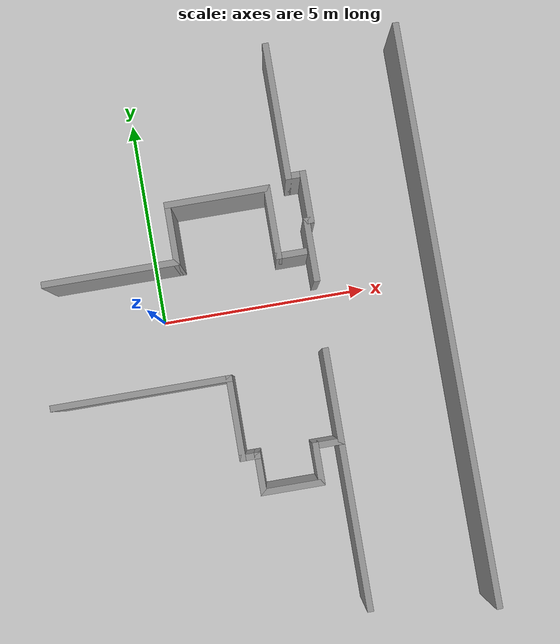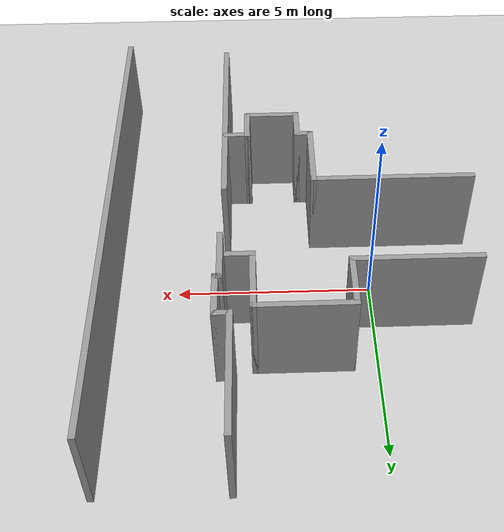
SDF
<sdf version="1.6">
 <world name="default">
  <light name="sun" type="directional">
   <pose>0 0 10 0 -0 0</pose>
   <diffuse>0.8 0.8 0.8 1</diffuse>
   <specular>0.1 0.1 0.1 1</specular>
   <attenuation>
    <range>1000</range>
    <constant>0.9</constant>
    <linear>0.01</linear>
    <quadratic>0.001</quadratic>
   </attenuation>
   <direction>-0.5 0.5 -1</direction>
  </light>
  <model name="ground_plane">
   <static>1</static>
   <link name="link">
    <collision name="collision">
     <geometry><plane><normal>0 0 1</normal><size>100 100</size></plane></geometry>
     <surface><friction><ode><mu>100</mu><mu2>50</mu2></ode></friction></surface>
    </collision>
    <visual name="visual">
     <cast_shadows>0</cast_shadows>
     <geometry><plane><normal>0 0 1</normal><size>100 100</size></plane></geometry>
     <material>
      <script><uri>file://media/materials/scripts/gazebo.material</uri><name>Gazebo/Grey</name></script>
     </material>
    </visual>
   </link>
  </model>
  <gravity>0 0 -9.8</gravity>
  <magnetic_field>6e-06 2.3e-05 -4.2e-05</magnetic_field>
  <atmosphere type="adiabatic"/>
  <physics name="default_physics" default="0" type="ode">
   <max_step_size>0.001</max_step_size>
   <real_time_factor>1</real_time_factor>
   <real_time_update_rate>1000</real_time_update_rate>
  </physics>
  <scene><ambient>0.4 0.4 0.4 1</ambient><background>0.7 0.7 0.7 1</background><shadows>1</shadows></scene>
  <spherical_coordinates>
   <surface_model>EARTH_WGS84</surface_model>
   <latitude_deg>0</latitude_deg>
   <longitude_deg>0</longitude_deg>
   <elevation>0</elevation>
   <heading_deg>0</heading_deg>
  </spherical_coordinates>
  <model name="watkinslab">
   <pose>1.96165 -0.985306 0 0 -0 0</pose>
   <link name="Wall_1">
    <collision name="Wall_1_Collision">
     <geometry><box><size>13.75 0.15 2.5</size></box></geometry>
     <pose>0 0 1.25 0 -0 0</pose>
    </collision>
    <visual name="Wall_1_Visual">
     <pose>0 0 1.25 0 -0 0</pose>
     <geometry><box><size>13.75 0.15 2.5</size></box></geometry>
     <material>
      <script><uri>file://media/materials/scripts/gazebo.material</uri><name>Gazebo/Grey</name></script>
      <ambient>1 1 1 1</ambient>
     </material>
    </visual>
    <pose>4.65632 -0.012516 0 0 -0 1.5708</pose>
   </link>
   <link name="Wall_11">
    <collision name="Wall_11_Collision">
     <geometry><box><size>3.25 0.15 2.5</size></box></geometry>
     <pose>0 0 1.25 0 -0 0</pose>
    </collision>
    <visual name="Wall_11_Visual">
     <pose>0 0 1.25 0 -0 0</pose>
     <geometry><box><size>3.25 0.15 2.5</size></box></geometry>
     <material>
      <script><uri>file://media/materials/scripts/gazebo.material</uri><name>Gazebo/Grey</name></script>
      <ambient>1 1 1 1</ambient>
     </material>
    </visual>
    <pose>-2.86007 2.16892 0 0 -0 0</pose>
   </link>
   <link name="Wall_12">
    <collision name="Wall_12_Collision">
     <geometry><box><size>1.5 0.15 2.5</size></box></geometry>
     <pose>0 0 1.25 0 -0 0</pose>
    </collision>
    <visual name="Wall_12_Visual">
     <pose>0 0 1.25 0 -0 0</pose>
     <geometry><box><size>1.5 0.15 2.5</size></box></geometry>
     <material>
      <script><uri>file://media/materials/scripts/gazebo.material</uri><name>Gazebo/Grey</name></script>
      <ambient>1 1 1 1</ambient>
     </material>
    </visual>
    <pose>-1.31007 2.84392 0 0 -0 1.5708</pose>
   </link>
   <link name="Wall_13">
    <collision name="Wall_13_Collision">
     <geometry><box><size>2.5 0.15 2.5</size></box></geometry>
     <pose>0 0 1.25 0 -0 0</pose>
    </collision>
    <visual name="Wall_13_Visual">
     <pose>0 0 1.25 0 -0 0</pose>
     <geometry><box><size>2.5 0.15 2.5</size></box></geometry>
     <material>
      <script><uri>file://media/materials/scripts/gazebo.material</uri><name>Gazebo/Grey</name></script>
      <ambient>1 1 1 1</ambient>
     </material>
    </visual>
    <pose>-0.135065 3.51892 0 0 -0 0</pose>
   </link>
   <link name="Wall_14">
    <collision name="Wall_14_Collision">
     <geometry><box><size>1.75 0.15 2.5</size></box></geometry>
     <pose>0 0 1.25 0 -0 0</pose>
    </collision>
    <visual name="Wall_14_Visual">
     <pose>0 0 1.25 0 -0 0</pose>
     <geometry><box><size>1.75 0.15 2.5</size></box></geometry>
     <material>
      <script><uri>file://media/materials/scripts/gazebo.material</uri><name>Gazebo/Grey</name></script>
      <ambient>1 1 1 1</ambient>
     </material>
    </visual>
    <pose>1.03994 2.71892 0 0 0 -1.5708</pose>
   </link>
   <link name="Wall_16">
    <collision name="Wall_16_Collision">
     <geometry><box><size>0.75 0.15 2.5</size></box></geometry>
     <pose>0 0 1.25 0 -0 0</pose>
    </collision>
    <visual name="Wall_16_Visual">
     <pose>0 0 1.25 0 -0 0</pose>
     <geometry><box><size>0.75 0.15 2.5</size></box></geometry>
     <material>
      <script><uri>file://media/materials/scripts/gazebo.material</uri><name>Gazebo/Grey</name></script>
      <ambient>1 1 1 1</ambient>
     </material>
    </visual>
    <pose>1.33994 1.91892 0 0 -0 0</pose>
   </link>
   <link name="Wall_18">
    <collision name="Wall_18_Collision">
     <geometry><box><size>4.25 0.15 2.5</size></box></geometry>
     <pose>0 0 1.25 0 -0 0</pose>
    </collision>
    <visual name="Wall_18_Visual">
     <pose>0 0 1.25 0 -0 0</pose>
     <geometry><box><size>4.25 0.15 2.5</size></box></geometry>
     <material>
      <script><uri>file://media/materials/scripts/gazebo.material</uri><name>Gazebo/Grey</name></script>
      <ambient>1 1 1 1</ambient>
     </material>
    </visual>
    <pose>-2.60632 -0.68056 0 0 -0 0</pose>
   </link>
   <link name="Wall_19">
    <collision name="Wall_19_Collision">
     <geometry><box><size>2 0.15 2.5</size></box></geometry>
     <pose>0 0 1.25 0 -0 0</pose>
    </collision>
    <visual name="Wall_19_Visual">
     <pose>0 0 1.25 0 -0 0</pose>
     <geometry><box><size>2 0.15 2.5</size></box></geometry>
     <material>
      <script><uri>file://media/materials/scripts/gazebo.material</uri><name>Gazebo/Grey</name></script>
      <ambient>1 1 1 1</ambient>
     </material>
    </visual>
    <pose>-0.556316 -1.60556 0 0 0 -1.5708</pose>
   </link>
   <link name="Wall_20">
    <collision name="Wall_20_Collision">
     <geometry><box><size>0.5 0.15 2.5</size></box></geometry>
     <pose>0 0 1.25 0 -0 0</pose>
    </collision>
    <visual name="Wall_20_Visual">
     <pose>0 0 1.25 0 -0 0</pose>
     <geometry><box><size>0.5 0.15 2.5</size></box></geometry>
     <material>
      <script><uri>file://media/materials/scripts/gazebo.material</uri><name>Gazebo/Grey</name></script>
      <ambient>1 1 1 1</ambient>
     </material>
    </visual>
    <pose>-0.381316 -2.53056 0 0 -0 0</pose>
   </link>
   <link name="Wall_21">
    <collision name="Wall_21_Collision">
     <geometry><box><size>1 0.15 2.5</size></box></geometry>
     <pose>0 0 1.25 0 -0 0</pose>
    </collision>
    <visual name="Wall_21_Visual">
     <pose>0 0 1.25 0 -0 0</pose>
     <geometry><box><size>1 0.15 2.5</size></box></geometry>
     <material>
      <script><uri>file://media/materials/scripts/gazebo.material</uri><name>Gazebo/Grey</name></script>
      <ambient>1 1 1 1</ambient>
     </material>
    </visual>
    <pose>-0.206316 -2.95556 0 0 0 -1.5708</pose>
   </link>
   <link name="Wall_22">
    <collision name="Wall_22_Collision">
     <geometry><box><size>1.5 0.15 2.5</size></box></geometry>
     <pose>0 0 1.25 0 -0 0</pose>
    </collision>
    <visual name="Wall_22_Visual">
     <pose>0 0 1.25 0 -0 0</pose>
     <geometry><box><size>1.5 0.15 2.5</size></box></geometry>
     <material>
      <script><uri>file://media/materials/scripts/gazebo.material</uri><name>Gazebo/Grey</name></script>
      <ambient>1 1 1 1</ambient>
     </material>
    </visual>
    <pose>0.468684 -3.38056 0 0 -0 0</pose>
   </link>
   <link name="Wall_23">
    <collision name="Wall_23_Collision">
     <geometry><box><size>1 0.15 2.5</size></box></geometry>
     <pose>0 0 1.25 0 -0 0</pose>
    </collision>
    <visual name="Wall_23_Visual">
     <pose>0 0 1.25 0 -0 0</pose>
     <geometry><box><size>1 0.15 2.5</size></box></geometry>
     <material>
      <script><uri>file://media/materials/scripts/gazebo.material</uri><name>Gazebo/Grey</name></script>
      <ambient>1 1 1 1</ambient>
     </material>
    </visual>
    <pose>1.14368 -2.95556 0 0 -0 1.5708</pose>
   </link>
   <link name="Wall_24">
    <collision name="Wall_24_Collision">
     <geometry><box><size>0.75 0.15 2.5</size></box></geometry>
     <pose>0 0 1.25 0 -0 0</pose>
    </collision>
    <visual name="Wall_24_Visual">
     <pose>0 0 1.25 0 -0 0</pose>
     <geometry><box><size>0.75 0.15 2.5</size></box></geometry>
     <material>
      <script><uri>file://media/materials/scripts/gazebo.material</uri><name>Gazebo/Grey</name></script>
      <ambient>1 1 1 1</ambient>
     </material>
    </visual>
    <pose>1.44368 -2.53056 0 0 -0 0</pose>
   </link>
   <link name="Wall_26">
    <collision name="Wall_26_Collision">
     <geometry><box><size>0.25 0.15 2.5</size></box></geometry>
     <pose>0 0 1.25 0 -0 0</pose>
    </collision>
    <visual name="Wall_26_Visual">
     <pose>0 0 1.25 0 -0 0</pose>
     <geometry><box><size>0.25 0.15 2.5</size></box></geometry>
     <material>
      <script><uri>file://media/materials/scripts/gazebo.material</uri><name>Gazebo/Grey</name></script>
      <ambient>1 1 1 1</ambient>
     </material>
    </visual>
    <pose>1.87033 2.61252 0 0 -0 3.14159</pose>
   </link>
   <link name="Wall_27">
    <collision name="Wall_27_Collision">
     <geometry><box><size>1.5 0.15 2.5</size></box></geometry>
     <pose>0 0 1.25 0 -0 0</pose>
    </collision>
    <visual name="Wall_27_Visual">
     <pose>0 0 1.25 0 -0 0</pose>
     <geometry><box><size>1.5 0.15 2.5</size></box></geometry>
     <material>
      <script><uri>file://media/materials/scripts/gazebo.material</uri><name>Gazebo/Grey</name></script>
      <ambient>1 1 1 1</ambient>
     </material>
    </visual>
    <pose>1.82032 1.93752 0 0 0 -1.5708</pose>
   </link>
   <link name="Wall_29">
    <collision name="Wall_29_Collision">
     <geometry><box><size>2.25 0.15 2.5</size></box></geometry>
     <pose>0 0 1.25 0 -0 0</pose>
    </collision>
    <visual name="Wall_29_Visual">
     <pose>0 0 1.25 0 -0 0</pose>
     <geometry><box><size>2.25 0.15 2.5</size></box></geometry>
     <material>
      <script><uri>file://media/materials/scripts/gazebo.material</uri><name>Gazebo/Grey</name></script>
      <ambient>1 1 1 1</ambient>
     </material>
    </visual>
    <pose>1.74368 -1.48056 0 0 -0 1.5708</pose>
   </link>
   <link name="Wall_31">
    <collision name="Wall_31_Collision">
     <geometry><box><size>4 0.15 2.5</size></box></geometry>
     <pose>0 0 1.25 0 -0 0</pose>
    </collision>
    <visual name="Wall_31_Visual">
     <pose>0 0 1.25 0 -0 0</pose>
     <geometry><box><size>4 0.15 2.5</size></box></geometry>
     <material>
      <script><uri>file://media/materials/scripts/gazebo.material</uri><name>Gazebo/Grey</name></script>
      <ambient>1 1 1 1</ambient>
     </material>
    </visual>
    <pose>1.74368 -4.45556 0 0 0 -1.5708</pose>
   </link>
   <link name="Wall_5">
    <collision name="Wall_5_Collision">
     <geometry><box><size>3.25 0.15 2.5</size></box></geometry>
     <pose>0 0 1.25 0 -0 0</pose>
    </collision>
    <visual name="Wall_5_Visual">
     <pose>0 0 1.25 0 -0 0</pose>
     <geometry><box><size>3.25 0.15 2.5</size></box></geometry>
     <material>
      <script><uri>file://media/materials/scripts/gazebo.material</uri><name>Gazebo/Grey</name></script>
      <ambient>1 1 1 1</ambient>
     </material>
    </visual>
    <pose>1.57032 5.26252 0 0 0 -1.5708</pose>
   </link>
   <link name="Wall_6">
    <collision name="Wall_6_Collision">
     <geometry><box><size>0.5 0.15 2.5</size></box></geometry>
     <pose>0 0 1.25 0 -0 0</pose>
    </collision>
    <visual name="Wall_6_Visual">
     <pose>0 0 1.25 0 -0 0</pose>
     <geometry><box><size>0.5 0.15 2.5</size></box></geometry>
     <material>
      <script><uri>file://media/materials/scripts/gazebo.material</uri><name>Gazebo/Grey</name></script>
      <ambient>1 1 1 1</ambient>
     </material>
    </visual>
    <pose>1.74533 3.71252 0 0 -0 0</pose>
   </link>
   <link name="Wall_7">
    <collision name="Wall_7_Collision">
     <geometry><box><size>1.25 0.15 2.5</size></box></geometry>
     <pose>0 0 1.25 0 -0 0</pose>
    </collision>
    <visual name="Wall_7_Visual">
     <pose>0 0 1.25 0 -0 0</pose>
     <geometry><box><size>1.25 0.15 2.5</size></box></geometry>
     <material>
      <script><uri>file://media/materials/scripts/gazebo.material</uri><name>Gazebo/Grey</name></script>
      <ambient>1 1 1 1</ambient>
     </material>
    </visual>
    <pose>1.92033 3.16252 0 0 0 -1.5708</pose>
   </link>
   <static>1</static>
  </model>
 </world>
</sdf>
